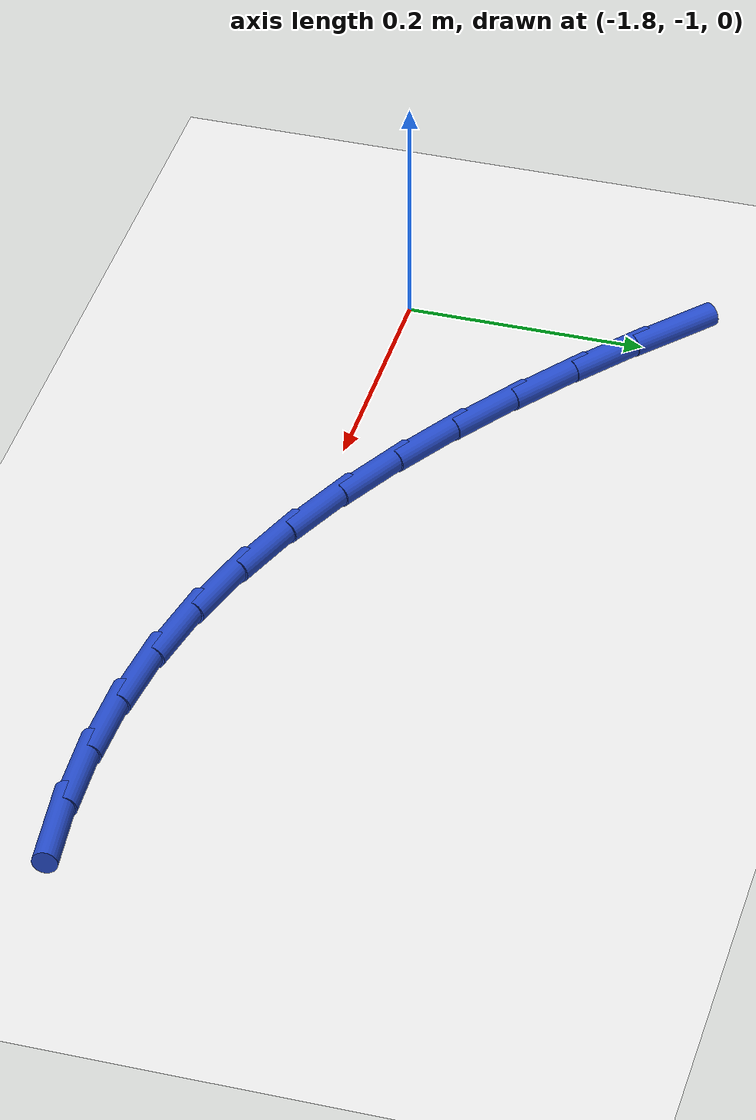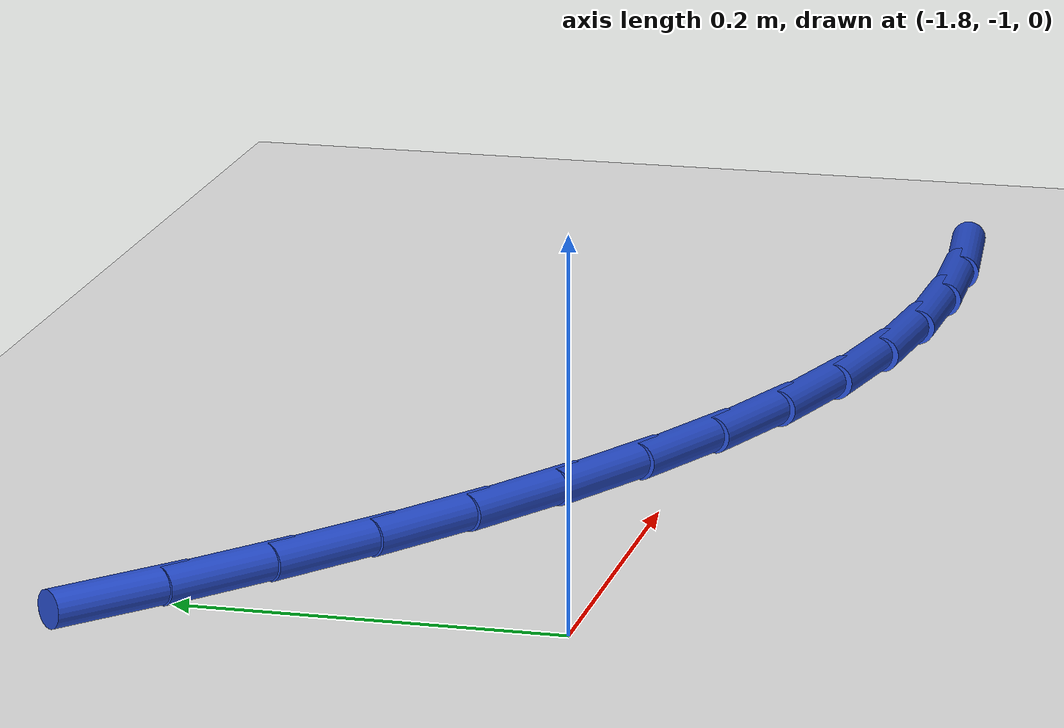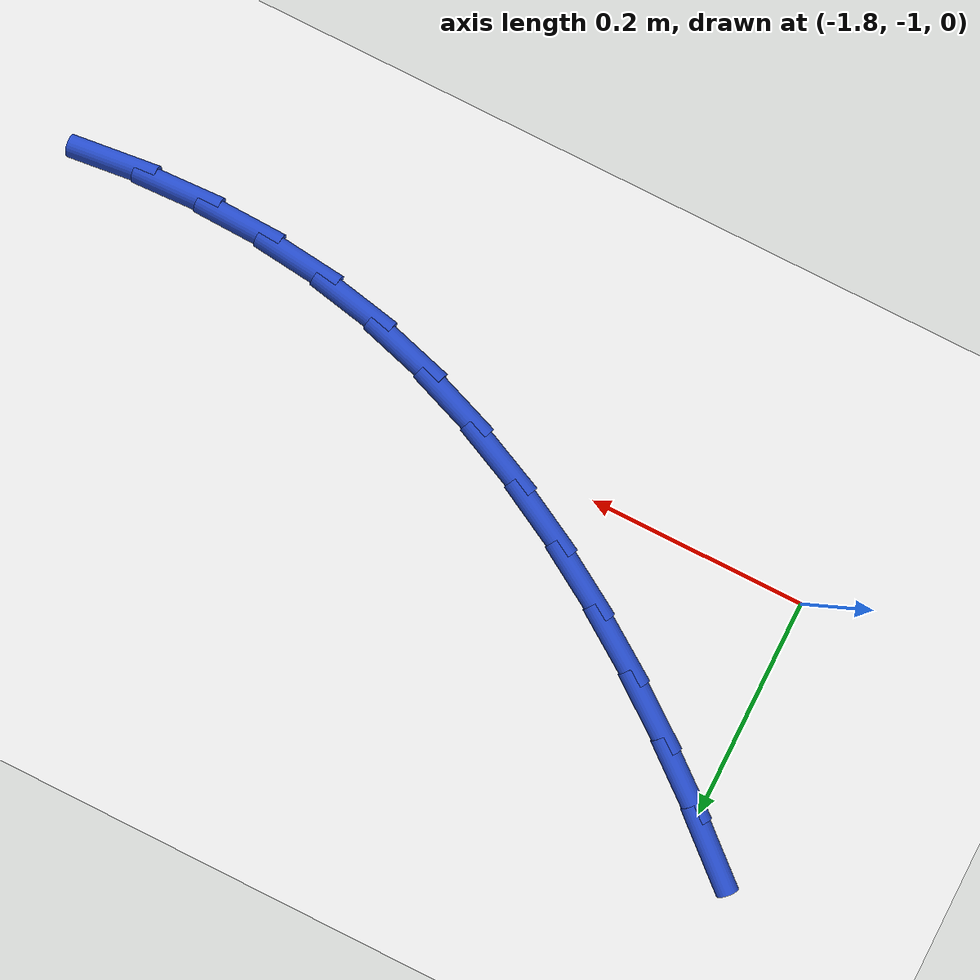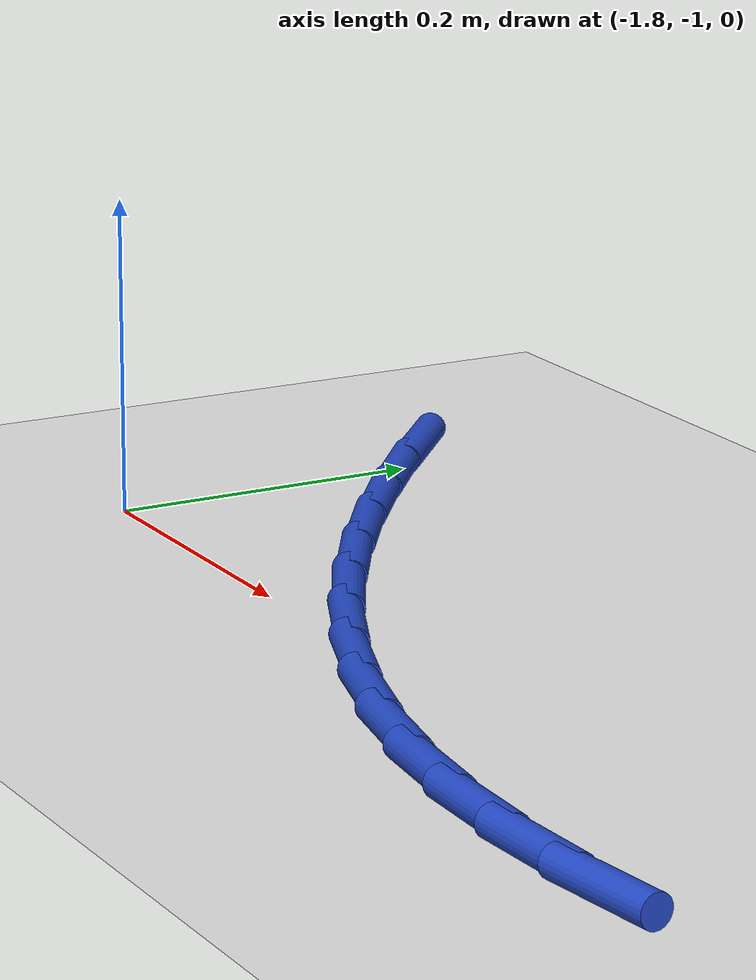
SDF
<sdf version="1.6">
 <world name="default">
  <model name="ground_plane">
   <static>1</static>
   <link name="link">
    <collision name="collision">
     <geometry><plane><normal>0 0 1</normal><size>100 100</size></plane></geometry>
     <surface><friction><ode><mu>100</mu><mu2>50</mu2></ode></friction></surface>
    </collision>
    <visual name="visual">
     <cast_shadows>0</cast_shadows>
     <geometry><plane><normal>0 0 1</normal><size>100 100</size></plane></geometry>
     <material>
      <script><uri>file://media/materials/scripts/gazebo.material</uri><name>Gazebo/WhiteGlow</name></script>
     </material>
    </visual>
   </link>
  </model>
  <model name="line">
   <link name="link_70">
    <pose>-1.8181557908606596 -0.7789177538522417 0.01 0 1.57 -0.7211054735215143</pose>
    <collision name="collision">
     <geometry><cylinder><radius>0.01</radius><length>0.08</length></cylinder></geometry>
    </collision>
    <visual name="visual">
     <material>
      <script><name>Gazebo/Blue</name><uri>file://media/materials/scripts/gazebo.material</uri></script>
     </material>
     <geometry><cylinder><radius>0.01</radius><length>0.08</length></cylinder></geometry>
    </visual>
   </link>
   <link name="link_71">
    <pose>-1.7711198140322753 -0.8202635842296688 0.01 0 1.57 -0.6808448107147773</pose>
    <collision name="collision">
     <geometry><cylinder><radius>0.01</radius><length>0.08</length></cylinder></geometry>
    </collision>
    <visual name="visual">
     <material>
      <script><name>Gazebo/Blue</name><uri>file://media/materials/scripts/gazebo.material</uri></script>
     </material>
     <geometry><cylinder><radius>0.01</radius><length>0.08</length></cylinder></geometry>
    </visual>
   </link>
   <link name="link_72">
    <pose>-1.7223333620664438 -0.8597835175649192 0.01 0 1.57 -0.6412361286478291</pose>
    <collision name="collision">
     <geometry><cylinder><radius>0.01</radius><length>0.08</length></cylinder></geometry>
    </collision>
    <visual name="visual">
     <material>
      <script><name>Gazebo/Blue</name><uri>file://media/materials/scripts/gazebo.material</uri></script>
     </material>
     <geometry><cylinder><radius>0.01</radius><length>0.08</length></cylinder></geometry>
    </visual>
   </link>
   <link name="link_73">
    <pose>-1.6719465894699457 -0.8973955787395063 0.01 0 1.57 -0.5977310538852856</pose>
    <collision name="collision">
     <geometry><cylinder><radius>0.01</radius><length>0.08</length></cylinder></geometry>
    </collision>
    <visual name="visual">
     <material>
      <script><name>Gazebo/Blue</name><uri>file://media/materials/scripts/gazebo.material</uri></script>
     </material>
     <geometry><cylinder><radius>0.01</radius><length>0.08</length></cylinder></geometry>
    </visual>
   </link>
   <link name="link_74">
    <pose>-1.6200583469638705 -0.9327216678231871 0.01 0 1.57 -0.5485172201593973</pose>
    <collision name="collision">
     <geometry><cylinder><radius>0.01</radius><length>0.08</length></cylinder></geometry>
    </collision>
    <visual name="visual">
     <material>
      <script><name>Gazebo/Blue</name><uri>file://media/materials/scripts/gazebo.material</uri></script>
     </material>
     <geometry><cylinder><radius>0.01</radius><length>0.08</length></cylinder></geometry>
    </visual>
   </link>
   <link name="link_75">
    <pose>-1.5667521736620866 -0.9652953064796245 0.01 0 1.57 -0.49298817350103125</pose>
    <collision name="collision">
     <geometry><cylinder><radius>0.01</radius><length>0.08</length></cylinder></geometry>
    </collision>
    <visual name="visual">
     <material>
      <script><name>Gazebo/Blue</name><uri>file://media/materials/scripts/gazebo.material</uri></script>
     </material>
     <geometry><cylinder><radius>0.01</radius><length>0.08</length></cylinder></geometry>
    </visual>
   </link>
   <link name="link_76">
    <pose>-1.5121116059953477 -0.9946500008855689 0.01 0 1.57 -0.4305360838341428</pose>
    <collision name="collision">
     <geometry><cylinder><radius>0.01</radius><length>0.08</length></cylinder></geometry>
    </collision>
    <visual name="visual">
     <material>
      <script><name>Gazebo/Blue</name><uri>file://media/materials/scripts/gazebo.material</uri></script>
     </material>
     <geometry><cylinder><radius>0.01</radius><length>0.08</length></cylinder></geometry>
    </visual>
   </link>
   <link name="link_77">
    <pose>-1.4562201803944055 -1.0203192572177682 0.01 0 1.57 -0.36061771927456104</pose>
    <collision name="collision">
     <geometry><cylinder><radius>0.01</radius><length>0.08</length></cylinder></geometry>
    </collision>
    <visual name="visual">
     <material>
      <script><name>Gazebo/Blue</name><uri>file://media/materials/scripts/gazebo.material</uri></script>
     </material>
     <geometry><cylinder><radius>0.01</radius><length>0.08</length></cylinder></geometry>
    </visual>
   </link>
   <link name="link_78">
    <pose>-1.399161433290012 -1.041836581652972 0.01 0 1.57 -0.28285327326323395</pose>
    <collision name="collision">
     <geometry><cylinder><radius>0.01</radius><length>0.08</length></cylinder></geometry>
    </collision>
    <visual name="visual">
     <material>
      <script><name>Gazebo/Blue</name><uri>file://media/materials/scripts/gazebo.material</uri></script>
     </material>
     <geometry><cylinder><radius>0.01</radius><length>0.08</length></cylinder></geometry>
    </visual>
   </link>
   <link name="link_79">
    <pose>-1.3410189011129208 -1.0587354803679287 0.01 0 1.57 -0.19771222342469152</pose>
    <collision name="collision">
     <geometry><cylinder><radius>0.01</radius><length>0.08</length></cylinder></geometry>
    </collision>
    <visual name="visual">
     <material>
      <script><name>Gazebo/Blue</name><uri>file://media/materials/scripts/gazebo.material</uri></script>
     </material>
     <geometry><cylinder><radius>0.01</radius><length>0.08</length></cylinder></geometry>
    </visual>
   </link>
   <link name="link_80">
    <pose>-1.2818811822243368 -1.0705825012117602 0.01 0 1.57 -0.11258714141981539</pose>
    <collision name="collision">
     <geometry><cylinder><radius>0.01</radius><length>0.08</length></cylinder></geometry>
    </collision>
    <visual name="visual">
     <material>
      <script><name>Gazebo/Blue</name><uri>file://media/materials/scripts/gazebo.material</uri></script>
     </material>
     <geometry><cylinder><radius>0.01</radius><length>0.08</length></cylinder></geometry>
    </visual>
   </link>
   <link name="link_81">
    <pose>-1.2219012123589499 -1.0773641532391336 0.01 0 1.57 -0.03284247245763886</pose>
    <collision name="collision">
     <geometry><cylinder><radius>0.01</radius><length>0.08</length></cylinder></geometry>
    </collision>
    <visual name="visual">
     <material>
      <script><name>Gazebo/Blue</name><uri>file://media/materials/scripts/gazebo.material</uri></script>
     </material>
     <geometry><cylinder><radius>0.01</radius><length>0.08</length></cylinder></geometry>
    </visual>
   </link>
   <link name="link_82">
    <pose>-1.1612762014542586 -1.079355944675519 0.01 0 1.57 0.04118813577412291</pose>
    <collision name="collision">
     <geometry><cylinder><radius>0.01</radius><length>0.08</length></cylinder></geometry>
    </collision>
    <visual name="visual">
     <material>
      <script><name>Gazebo/Blue</name><uri>file://media/materials/scripts/gazebo.material</uri></script>
     </material>
     <geometry><cylinder><radius>0.01</radius><length>0.08</length></cylinder></geometry>
    </visual>
   </link>
   <link name="link_83">
    <pose>-1.1002042322115149 -1.0768390806982209 0.01 0 1.57 0.10954375687083458</pose>
    <collision name="collision">
     <geometry><cylinder><radius>0.01</radius><length>0.08</length></cylinder></geometry>
    </collision>
    <visual name="visual">
     <material>
      <script><name>Gazebo/Blue</name><uri>file://media/materials/scripts/gazebo.material</uri></script>
     </material>
     <geometry><cylinder><radius>0.01</radius><length>0.08</length></cylinder></geometry>
    </visual>
   </link>
  </model>
 </world>
</sdf>
